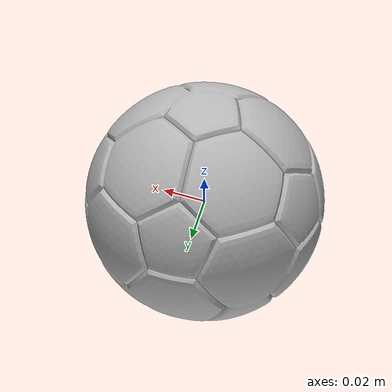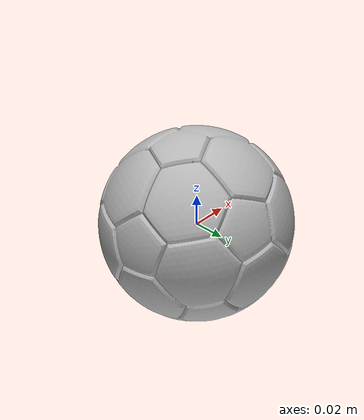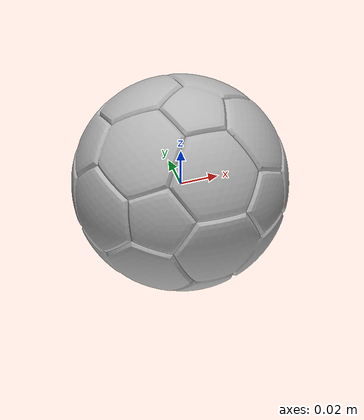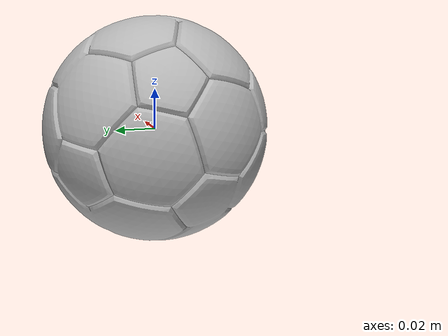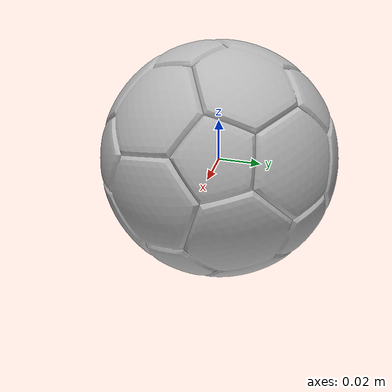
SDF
<?xml version='1.0'?>
<sdf version='1.6'>
    <model name='soccer_ball'>
        <pose frame=''>0.0 0.0 0.0 0.0 0.0 0.</pose>
        <link name='base_link_ball'>
            <gravity>0</gravity>
            <visual name='base_link_ball_vis'>
                <geometry>
                    <mesh>
                        <scale>0.05 0.05 0.05</scale>
                        <uri>model://ball/meshes/ballonFoot.obj</uri>
                    </mesh>
                </geometry>
            </visual>
            <collision name='base_link_ball_col'>
                <geometry>
                    <mesh>
                        <scale>0.05 0.05 0.05</scale>
                        <uri>model://ball/meshes/ballonFoot.obj</uri>
                    </mesh>
                </geometry>
            </collision>
        </link>
    </model>
</sdf>
